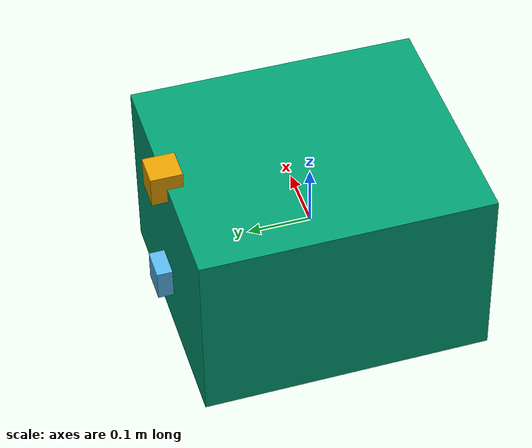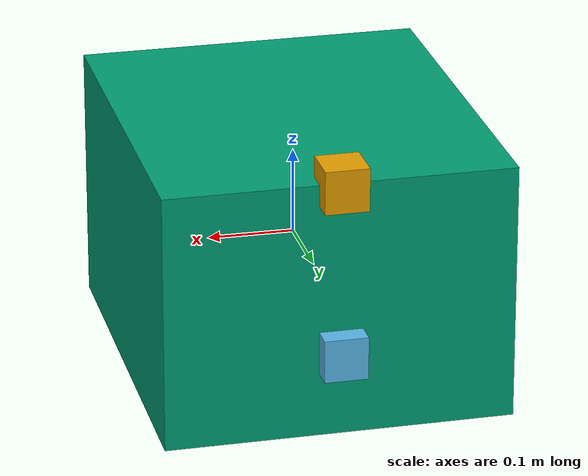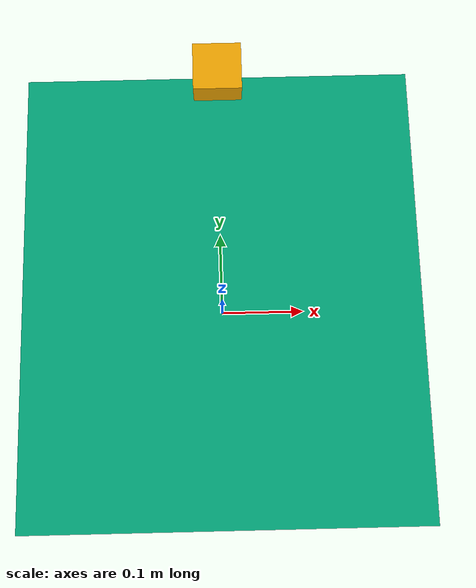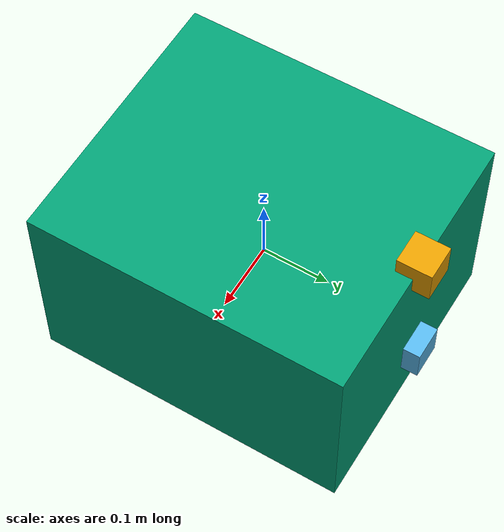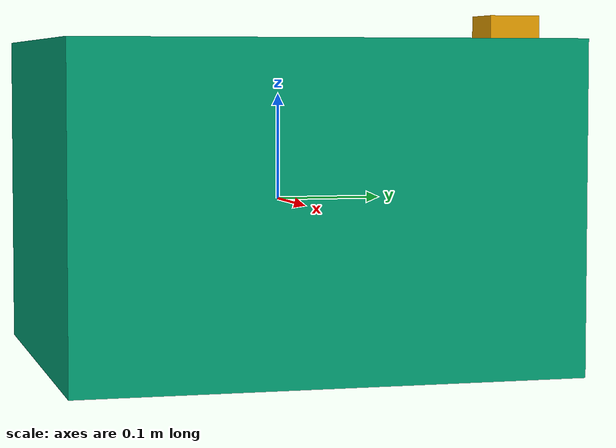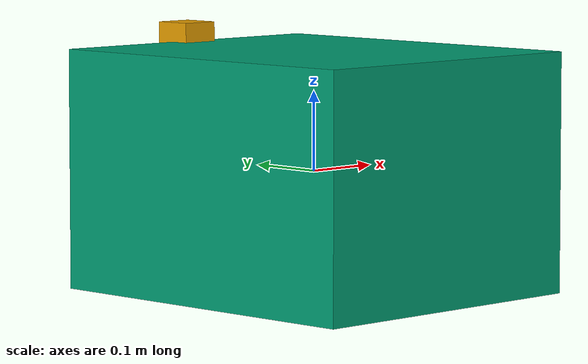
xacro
<?xml version="1.0"?>
<robot name="red_herring" xmlns:xacro="http://www.ros.org/wiki/xacro">

  <!--General Properties-->
  <xacro:property name="pi" value="3.14159"/>
  <xacro:property name="main_body" value="red_herring"/>
  <xacro:arg name="use_simple_mesh" default="true"/>
  <xacro:arg name="color_format" default="R8G8B8"/>
  <xacro:arg name="image_topic_name" default="image"/>

  <!--RedHerring Collision approximations-->
  <xacro:property name="rh_x_len" value="0.40"/>
  <xacro:property name="rh_y_len" value="0.46"/>
  <xacro:property name="rh_z_len" value="0.30"/>

  <!--Top-Camera Collision approximations-->
  <xacro:property name="top_cam_x_len" value="0.05"/>
  <xacro:property name="top_cam_y_len" value="0.05"/>
  <xacro:property name="top_cam_z_len" value="0.05"/>

  <!--Top Camera sensor settings-->
  <xacro:property name="top_camera_link_name" value="top_camera_link"/>
  <xacro:arg name="top_fps" default="20"/>
  <xacro:arg name="top_fov_rad" default="1.396"/>
  <xacro:arg name="top_height" default="600"/>
  <xacro:arg name="top_width" default="800"/>
  <xacro:arg name="top_clip_near" default="0.02"/>
  <xacro:arg name="top_clip_far" default="300"/>
  <xacro:arg name="top_camera_topic" default="camera/one"/>

  <!--Bottom-Camera Collision approximations-->
  <xacro:property name="bot_cam_x_len" value="0.05"/>
  <xacro:property name="bot_cam_y_len" value="0.05"/>
  <xacro:property name="bot_cam_z_len" value="0.05"/>

  <!--Bottom Camera sensor settings-->
  <xacro:property name="bot_camera_link_name" value="bot_camera_link"/>
  <xacro:arg name="bot_fps" default="20"/>
  <xacro:arg name="bot_fov_rad" default="1.396"/>
  <xacro:arg name="bot_height" default="600"/>
  <xacro:arg name="bot_width" default="800"/>
  <xacro:arg name="bot_clip_near" default="0.02"/>
  <xacro:arg name="bot_clip_far" default="300"/>
  <xacro:arg name="bot_camera_topic" default="camera/two"/>

  <joint name="top_camera_joint" type="fixed">
    <parent link="${main_body}"/>
    <child link="${top_camera_link_name}"/>
    <origin xyz="0 ${rh_y_len/2} ${rh_z_len/2}" rpy="0 0 ${pi/2}"/>
  </joint>

  <joint name="bot_camera_joint" type="fixed">
    <parent link="${main_body}"/>
    <child link="${bot_camera_link_name}"/>
    <origin xyz="0 ${rh_y_len/2} ${-bot_cam_z_len}" rpy="0 ${pi/2} ${pi/2}"/>
  </joint>

  <link name="${top_camera_link_name}">
    <visual>
      <origin xyz="0 0 0" rpy="0 0 0"/>
      <geometry>
        <box size="${top_cam_x_len} ${top_cam_y_len} ${top_cam_z_len}"/>
      </geometry>
    </visual>
    <collision>
      <origin xyz="0 0 0" rpy="0 0 0"/>
      <geometry>
        <box size="${top_cam_x_len} ${top_cam_y_len} ${top_cam_z_len}"/>
      </geometry>
    </collision>
    <inertial>
      <mass value="1e-3"/>
      <origin xyz="0 0 0" rpy="0 0 0"/>
      <inertia ixx="1e-4" ixy="0" ixz="0"
                       iyy="1e-4" iyz="0"
                               izz="1e-4"/>
    </inertial>
  </link>

  <link name="${bot_camera_link_name}">
    <visual>
      <origin xyz="0 0 0" rpy="0 0 0"/>
      <geometry>
        <box size="${bot_cam_x_len} ${bot_cam_y_len} ${bot_cam_z_len}"/>
      </geometry>
    </visual>
    <collision>
      <origin xyz="0 0 0" rpy="0 0 0"/>
      <geometry>
        <box size="${bot_cam_x_len} ${bot_cam_y_len} ${bot_cam_z_len}"/>
      </geometry>
    </collision>
    <inertial>
      <mass value="1e-3"/>
      <origin xyz="0 0 0" rpy="0 0 0"/>
      <inertia ixx="1e-4" ixy="0" ixz="0"
                       iyy="1e-4" iyz="0"
                               izz="1e-4"/>
    </inertial>
  </link>

  <link name="${main_body}">
    <visual>
      <origin rpy="0 0 0" xyz="0 0 0"/>
      <geometry>
        <xacro:if value="$(arg use_simple_mesh)">
          <box size="${rh_x_len} ${rh_y_len} ${rh_z_len}"/>
        </xacro:if>
        <xacro:unless value="$(arg use_simple_mesh)">
          <mesh filename="$(find Gazebo_models)/models/red_herring/red_herring.dae"/>
        </xacro:unless>
      </geometry>
    </visual>
    <collision>
      <origin rpy="0 0 0" xyz="0 0 0"/>
      <geometry>
        <box size="${rh_x_len} ${rh_y_len} ${rh_z_len}"/>
      </geometry>
    </collision>
    <inertial>
      <origin rpy="0 0 0" xyz="0 0 ${rh_z_len/2}"/>
      <mass value="10"/>
      <inertia ixx="1" ixy="0" ixz="0"
                       iyy="1" iyz="0"
                               izz="1"/>
    </inertial>
  </link>

  <gazebo reference="${top_camera_link_name}">
    <sensor type="camera" name="${top_camera_link_name}">
      <update_rate>$(arg top_fps)</update_rate>
      <camera name="top">
        <horizontal_fov>$(arg top_fov_rad)</horizontal_fov>
        <image>
          <width>$(arg top_width)</width>
          <height>$(arg top_height)</height>
          <format>${(arg color_format)</format>
        </image>
        <clip>
          <near>$(arg top_clip_near)</near>
          <far>$(arg top_clip_far)</far>
        </clip>
        <noise>
          <type>gaussian</type>
          <mean>0</mean>
          <stddev>0.007</stddev>
        </noise>
      </camera>
      <plugin name="camera_top_controller" filename="libgazebo_ros_camera.so">
        <alwaysOn>true</alwaysOn>
        <updateRate>0</updateRate>
        <cameraName>$(arg top_camera_topic)</cameraName>
        <imageTopicName>$(arg image_topic_name)</imageTopicName>
        <cameraInfoTopicName>camera_top_info</cameraInfoTopicName>
        <frameName>${top_camera_link_name}</frameName>
        <hackBaseLine>0.07</hackBaseLine>
        <distortionK1>0</distortionK1>
        <distortionK2>0</distortionK2>
        <distortionK3>0</distortionK3>
        <distortianT1>0</distortianT1>
        <distortionT2>0</distortionT2>
      </plugin>
    </sensor>
  </gazebo>

  <gazebo reference="${bot_camera_link_name}">
    <sensor type="camera" name="${bot_camera_link_name}">
      <update_rate>$(arg bot_fps)</update_rate>
      <camera name="bottom">
        <horizontal_fov>$(arg bot_fov_rad)</horizontal_fov>
        <image>
          <width>$(arg bot_width)</width>
          <height>$(arg bot_height)</height>
          <format>${(arg bot_color_format)</format>
        </image>
        <clip>
          <near>$(arg bot_clip_near)</near>
          <far>$(arg bot_clip_far)</far>
        </clip>
        <noise>
          <type>gaussian</type>
          <mean>0</mean>
          <stddev>0.007</stddev>
        </noise>
      </camera>
      <plugin name="camera_bottom_controller" filename="libgazebo_ros_camera.so">
        <alwaysOn>true</alwaysOn>
        <updateRate>0</updateRate>
        <cameraName>$(arg bot_camera_topic)</cameraName>
        <imageTopicName>$(arg image_topic_name)</imageTopicName>
        <cameraInfoTopicName>camera_top_info</cameraInfoTopicName>
        <frameName>${bot_camera_link_name}</frameName>
        <hackBaseLine>0.07</hackBaseLine>
        <distortionK1>0</distortionK1>
        <distortionK2>0</distortionK2>
        <distortionK3>0</distortionK3>
        <distortianT1>0</distortianT1>
        <distortionT2>0</distortionT2>
      </plugin>
    </sensor>
  </gazebo>

</robot>
